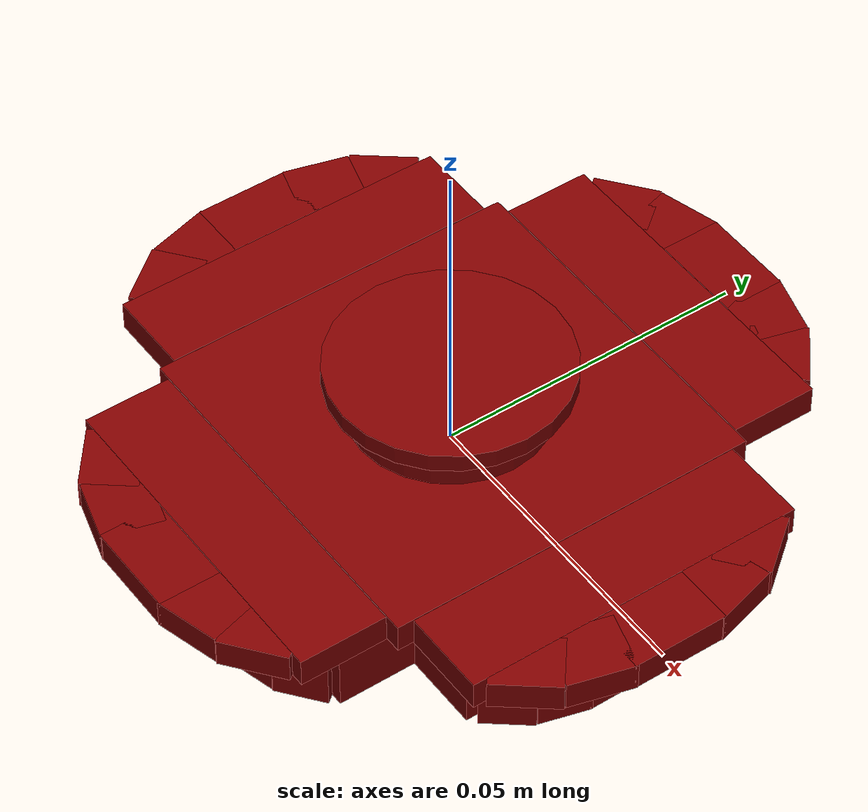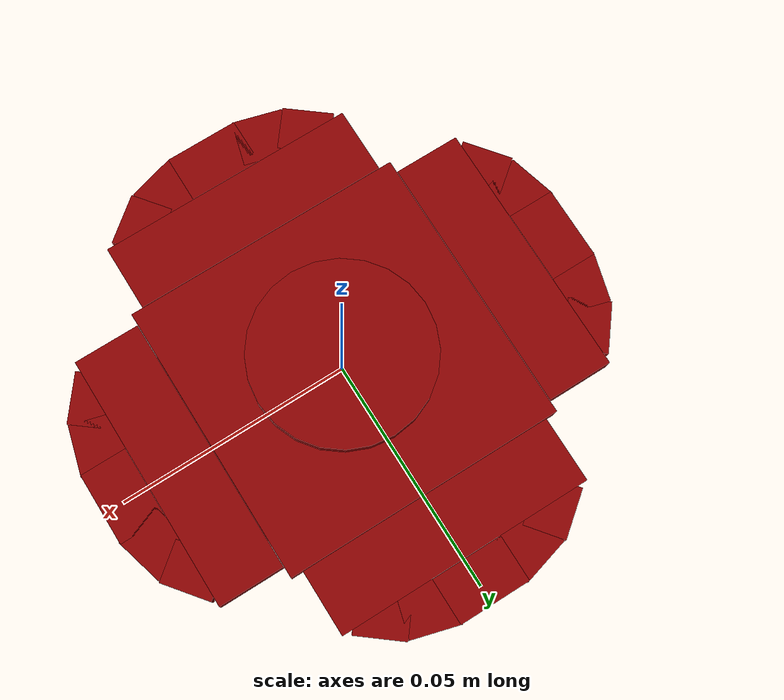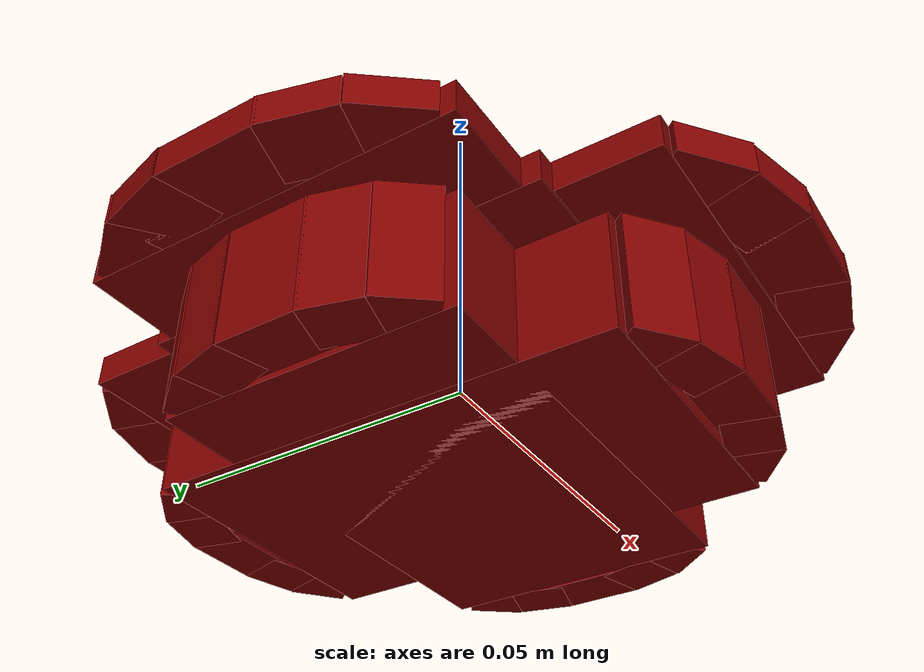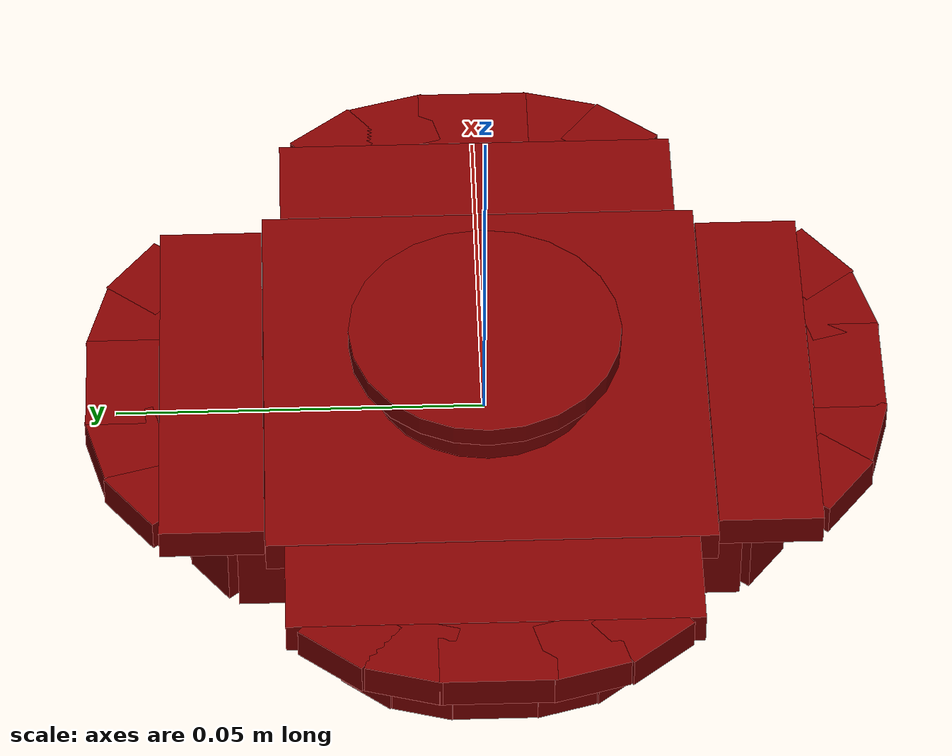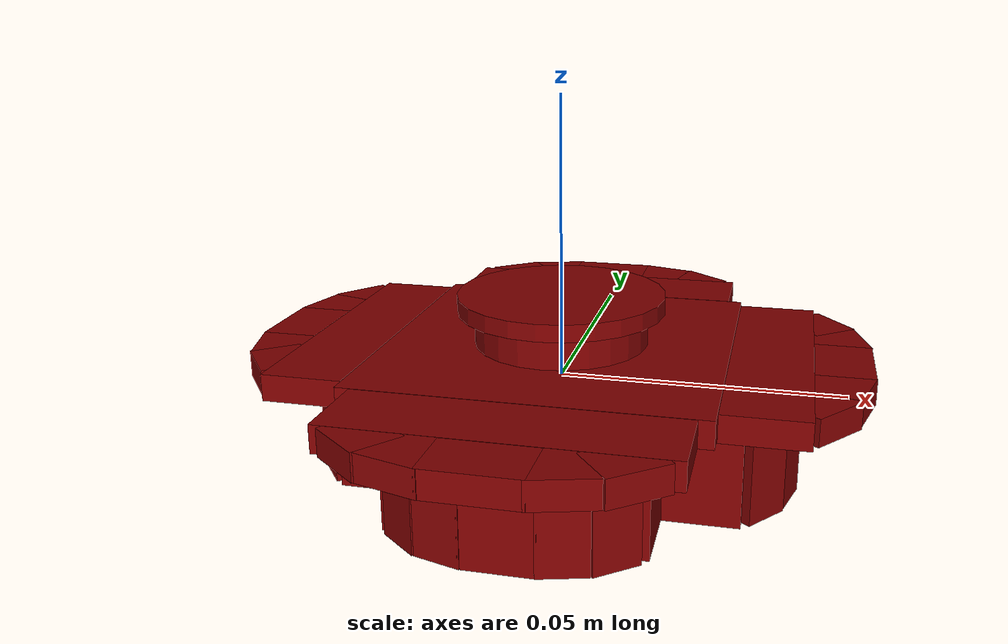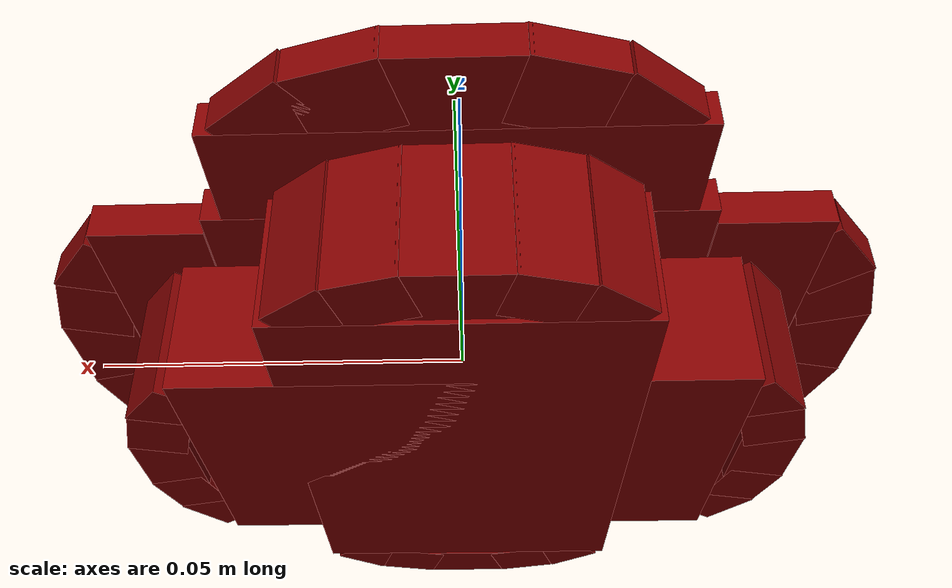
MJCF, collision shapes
<?xml version='1.0' encoding='UTF-8'?>
<mujoco model="model">
  <option timestep="0.002" gravity="0.0 0.0 -9.81"/>
  <compiler angle="radian"/>
  <asset>
    <mesh file="visuals/lid.obj" name="lid_vis"/>
    <texture file="visuals/T_BC001.png" name="lid_material" type="2d"/>
    <material name="lid_material" rgba="1 1 1 1.0" texture="lid_material" shininess="0.5" specular="0.33333333333333337"/>
  </asset>
  <default>
    <default class="visual">
      <geom conaffinity="0" contype="0" group="1" type="mesh"/>
    </default>
    <default class="collision">
      <geom group="0" rgba="0.5 0 0 0.5" density="1000" solref="0.01 1.8" solimp="0.8 0.95 0.02" condim="3"/>
    </default>
    <default class="spawn">
      <geom group="0" rgba="1 1 1 0.5" contype="0" conaffinity="0"/>
      <site group="0" rgba="1 1 1 0.5"/>
    </default>
    <default class="region">
      <geom group="1" conaffinity="0" contype="0" rgba="0 1 0 0" mass="0"/>
    </default>
  </default>
  <worldbody>
    <body>
      <body name="object">
        <geom mesh="lid_vis" type="mesh" solimp="0.998 0.998 0.001" solref="0.001 1" friction="0.95 0.3 0.1" class="visual" material="lid_material"/>
        <geom type="box" pos="0.010996883735060692 0.047959111630916595 0.004224015399813652" size="0.0047276318073272705 0.005228041671216488 0.002289771568030119" quat="-4.822165351470176e-07 -0.7957519888877869 -0.6056226491928101 -4.227601095863065e-07" class="collision"/>
        <geom type="box" pos="0.019033167511224747 0.04460060968995094 0.004224025644361973" size="0.004306779243052006 0.005228040274232626 0.0022897720336914062" quat="-5.636180731016793e-07 -0.9001869559288025 -0.43550369143486023 -3.0400710215872095e-07" class="collision"/>
        <geom type="box" pos="-0.010996883735060692 0.047959111630916595 0.004224015399813652" size="0.0047276318073272705 0.005228041671216488 0.0022897718008607626" quat="0.7957519888877869 0.0 0.0 -0.6056226491928101" class="collision"/>
        <geom type="box" pos="-0.019033169373869896 0.04460060968995094 0.004224025644361973" size="0.004306779243052006 0.005228039808571339 0.0022897720336914062" quat="0.9001870155334473 0.0 0.0 -0.4355035126209259" class="collision"/>
        <geom type="box" pos="-1.3417750244215654e-09 -2.012662481121197e-09 0.004224025644361973" size="0.029880311340093613 0.029880311340093613 0.0023101004771888256" quat="1.0 0.0 0.0 0.0" class="collision"/>
        <geom type="box" pos="-0.03773421421647072 0.008652335964143276 -0.0068616983480751514" size="0.0037196988705545664 0.004113419912755489 0.00835223775357008" quat="9.384868349116005e-08 0.13444244861602783 0.9909213781356812 6.328863264570828e-07" class="collision"/>
        <geom type="box" pos="-0.03509174659848213 0.014975287951529026 -0.006861676927655935" size="0.0033885734155774117 0.004113419912755489 0.008352239616215229" quat="2.2936870891498984e-07 0.3285808861255646 0.9444758296012878 5.975713293082663e-07" class="collision"/>
        <geom type="box" pos="-0.03773421421647072 -0.008652329444885254 -0.0068617090582847595" size="0.0037196986377239227 0.004113421775400639 0.008352238684892654" quat="-0.9909214973449707 -0.0 0.0 -0.13444161415100098" class="collision"/>
        <geom type="box" pos="-0.035091742873191833 -0.014975277706980705 -0.006861676927655935" size="0.003388571785762906 0.004113419447094202 0.008352239616215229" quat="-0.9444758892059326 -0.0 0.0 -0.3285806477069855" class="collision"/>
        <geom type="box" pos="-0.038471754640340805 7.379763022896668e-09 -0.006861676927655935" size="0.003854212583974004 0.0060139000415802 0.008352239616215229" quat="1.0 0.0 0.0 0.0" class="collision"/>
        <geom type="box" pos="-0.008652341552078724 -0.03773422911763191 -0.0068616983480751514" size="0.0037196995690464973 0.004113418981432915 0.00835223775357008" quat="-4.2276008116459707e-07 0.6056227087974548 -0.7957519292831421 4.822165351470176e-07" class="collision"/>
        <geom type="box" pos="-0.014975289814174175 -0.03509175404906273 -0.006861676927655935" size="0.0033885727170854807 0.004113419447094202 0.008352239616215229" quat="-3.0400710215872095e-07 0.43550366163253784 -0.9001869559288025 5.636180731016793e-07" class="collision"/>
        <geom type="box" pos="0.008652335964143276 -0.03773422911763191 -0.0068617090582847595" size="0.0037196995690464973 0.004113421309739351 0.008352238684892654" quat="-0.6056227087974548 -0.0 0.0 -0.7957519292831421" class="collision"/>
        <geom type="box" pos="0.014975292608141899 -0.03509175777435303 -0.006861676927655935" size="0.0033885734155774117 0.004113420378416777 0.008352239616215229" quat="-0.43550387024879456 -0.0 0.0 -0.9001868367195129" class="collision"/>
        <geom type="box" pos="-2.6835500488431308e-09 -0.038471758365631104 -0.006861676927655935" size="0.006013908889144659 0.003854206996038556 0.008352239616215229" quat="1.0 0.0 0.0 0.0" class="collision"/>
        <geom type="box" pos="0.0 0.03696770593523979 0.004224025644361973" size="0.027345970273017883 0.006957711186259985 0.002310100942850113" quat="1.0 0.0 0.0 0.0" class="collision"/>
        <geom type="box" pos="0.03773421421647072 -0.008652345277369022 -0.0068616983480751514" size="0.0037196981720626354 0.004113420844078064 0.00835223775357008" quat="-6.328863833005016e-07 -0.9909214973449707 0.13444188237190247 9.384830690351009e-08" class="collision"/>
        <geom type="box" pos="0.03509175404906273 -0.014975294470787048 -0.006861676927655935" size="0.003388573182746768 0.004113419912755489 0.008352239616215229" quat="-5.975713293082663e-07 -0.9444758892059326 0.32858073711395264 2.2936863786071626e-07" class="collision"/>
        <geom type="box" pos="0.03773421421647072 0.008652335964143276 -0.0068617090582847595" size="0.0037196986377239227 0.004113419912755489 0.008352238684892654" quat="0.1344417780637741 0.0 0.0 -0.9909214973449707" class="collision"/>
        <geom type="box" pos="0.03509174659848213 0.014975291676819324 -0.006861676927655935" size="0.0033885727170854807 0.004113419912755489 0.008352239616215229" quat="0.3285807967185974 0.0 0.0 -0.9444758892059326" class="collision"/>
        <geom type="box" pos="0.038471758365631104 0.0 -0.006861676927655935" size="0.003854211652651429 0.006013901438564062 0.008352239616215229" quat="1.0 0.0 0.0 0.0" class="collision"/>
        <geom type="box" pos="0.008652344346046448 0.03773420676589012 -0.0068616983480751514" size="0.0037196986377239227 0.004113420378416777 0.00835223775357008" quat="-4.822165351470176e-07 -0.7957519888877869 -0.6056226491928101 -4.227601095863065e-07" class="collision"/>
        <geom type="box" pos="0.014975294470787048 0.03509174659848213 -0.006861676927655935" size="0.0033885727170854807 0.004113419447094202 0.008352239616215229" quat="-5.636180731016793e-07 -0.9001869559288025 -0.43550366163253784 -3.040070453153021e-07" class="collision"/>
        <geom type="box" pos="-0.008652341552078724 0.03773420676589012 -0.0068617090582847595" size="0.0037196986377239227 0.004113420378416777 0.008352238684892654" quat="0.7957519888877869 0.0 0.0 -0.6056226491928101" class="collision"/>
        <geom type="box" pos="-0.014975286088883877 0.035091742873191833 -0.006861676927655935" size="0.003388573182746768 0.004113419912755489 0.008352239616215229" quat="0.9001870155334473 0.0 0.0 -0.4355035126209259" class="collision"/>
        <geom type="box" pos="-1.3417750244215654e-09 -2.012662481121197e-09 -0.006861676927655935" size="0.03385908156633377 0.021236956119537354 0.008426396176218987" quat="1.0 0.0 0.0 0.0" class="collision"/>
        <geom type="box" pos="0.0 0.04889652132987976 0.004224025644361973" size="0.007643497083336115 0.004898594692349434 0.0022897720336914062" quat="1.0 0.0 0.0 0.0" class="collision"/>
        <geom type="cylinder" pos="0.0 -2.012662481121197e-09 0.005619504489004612" size="0.015405668877065182 0.007780520245432854" quat="1.0 0.0 0.0 0.0" class="collision"/>
        <geom type="box" pos="1.3417750244215654e-09 -4.025324962242394e-09 -0.006861676927655935" size="0.021236946806311607 0.033859070390462875 0.008426396176218987" quat="1.0 0.0 0.0 0.0" class="collision"/>
        <geom type="box" pos="1.3417750244215654e-09 0.038471754640340805 -0.006861676927655935" size="0.0060139065608382225 0.0038542088586837053 0.008352239616215229" quat="1.0 0.0 0.0 0.0" class="collision"/>
        <geom type="box" pos="-0.047959111630916595 0.010996876284480095 0.004224015399813652" size="0.004727631341665983 0.005228041671216488 0.002289771568030119" quat="9.384870480744212e-08 0.13444244861602783 0.9909213781356812 6.328863264570828e-07" class="collision"/>
        <geom type="box" pos="-0.04460061341524124 0.019033167511224747 0.004224025644361973" size="0.00430678017437458 0.005228040739893913 0.0022897720336914062" quat="2.2936895049952e-07 0.32858121395111084 0.9444757103919983 5.975712156214286e-07" class="collision"/>
        <geom type="box" pos="-0.047959111630916595 -0.0109968651086092 0.004224015399813652" size="0.004727630876004696 0.005228041671216488 0.0022897718008607626" quat="-0.9909214973449707 -0.0 0.0 -0.13444161415100098" class="collision"/>
        <geom type="box" pos="-0.04460061714053154 -0.01903315633535385 0.004224025644361973" size="0.004306779243052006 0.005228039808571339 0.0022897720336914062" quat="-0.9444760084152222 -0.0 0.0 -0.32858043909072876" class="collision"/>
        <geom type="box" pos="-0.03696770593523979 7.379763022896668e-09 0.004224025644361973" size="0.006957677658647299 0.027345960959792137 0.002310101641342044" quat="1.0 0.0 0.0 0.0" class="collision"/>
        <geom type="box" pos="-0.04889652132987976 1.0063312849695194e-08 0.004224025644361973" size="0.0048985895700752735 0.007643499411642551 0.0022897720336914062" quat="1.0 0.0 0.0 0.0" class="collision"/>
        <geom type="box" pos="-0.010996878147125244 -0.047959111630916595 0.004224015399813652" size="0.004727630410343409 0.005228041671216488 0.002289771568030119" quat="-4.2276013800801593e-07 0.6056227087974548 -0.7957519292831421 4.822164783035987e-07" class="collision"/>
        <geom type="box" pos="-0.019033163785934448 -0.04460061714053154 0.004224025644361973" size="0.004306779243052006 0.005228040739893913 0.0022897720336914062" quat="-3.040070737370115e-07 0.43550366163253784 -0.9001869559288025 5.636180731016793e-07" class="collision"/>
        <geom type="cylinder" name="handle_main" pos="0.0 -2.012662481121197e-09 0.013892319984734058" size="0.018358664587140083 0.001486250082962215" quat="1.0 0.0 0.0 0.0" class="collision"/>
        <geom type="box" pos="0.010996868833899498 -0.047959111630916595 0.004224015399813652" size="0.004727630876004696 0.005228041671216488 0.0022897718008607626" quat="-0.6056227087974548 -0.0 0.0 -0.7957519292831421" class="collision"/>
        <geom type="box" pos="0.019033165648579597 -0.04460062086582184 0.004224025644361973" size="0.004306779243052006 0.005228040739893913 0.0022897720336914062" quat="-0.43550387024879456 -0.0 0.0 -0.9001868367195129" class="collision"/>
        <geom type="box" pos="-5.3671000976862615e-09 -0.03696770593523979 0.004224025644361973" size="0.027345973998308182 0.006957724690437317 0.002310102107003331" quat="1.0 0.0 0.0 0.0" class="collision"/>
        <geom type="box" pos="-5.3671000976862615e-09 -0.04889652505517006 0.004224025644361973" size="0.007643495220690966 0.0048985895700752735 0.0022897720336914062" quat="1.0 0.0 0.0 0.0" class="collision"/>
        <geom type="box" pos="0.047959111630916595 -0.010996882803738117 0.004224015399813652" size="0.004727629944682121 0.005228040739893913 0.002289771568030119" quat="-6.328863833005016e-07 -0.9909214973449707 0.13444194197654724 9.384831400893745e-08" class="collision"/>
        <geom type="box" pos="0.04460061341524124 -0.019033167511224747 0.004224025644361973" size="0.004306779243052006 0.005228040739893913 0.0022897720336914062" quat="-5.975713861516851e-07 -0.9444759488105774 0.3285806179046631 2.2936855259558797e-07" class="collision"/>
        <geom type="box" pos="0.047959111630916595 0.010996874421834946 0.004224015399813652" size="0.004727629479020834 0.005228041205555201 0.0022897718008607626" quat="0.1344417780637741 0.0 0.0 -0.9909214973449707" class="collision"/>
        <geom type="box" pos="0.04460061341524124 0.019033167511224747 0.004224025644361973" size="0.00430678017437458 0.005228039808571339 0.0022897720336914062" quat="0.3285807967185974 0.0 0.0 -0.9444758892059326" class="collision"/>
        <geom type="box" pos="0.03696770593523979 -1.3417750244215654e-09 0.004224025644361973" size="0.006957676727324724 0.027345960959792137 0.002310102339833975" quat="1.0 0.0 0.0 0.0" class="collision"/>
        <geom type="box" pos="0.04889652132987976 6.708875122107827e-10 0.004224025644361973" size="0.0048985895700752735 0.007643497548997402 0.0022897720336914062" quat="1.0 0.0 0.0 0.0" class="collision"/>
        <geom class="region" name="reg_main" density="0" type="box" pos="-8.30000000000275e-07 5.963999999999969e-05 -0.00174062" size="0.07483300000000001 0.0748355 0.0164865"/>
      </body>
    </body>
  </worldbody>
  <actuator/>
</mujoco>
